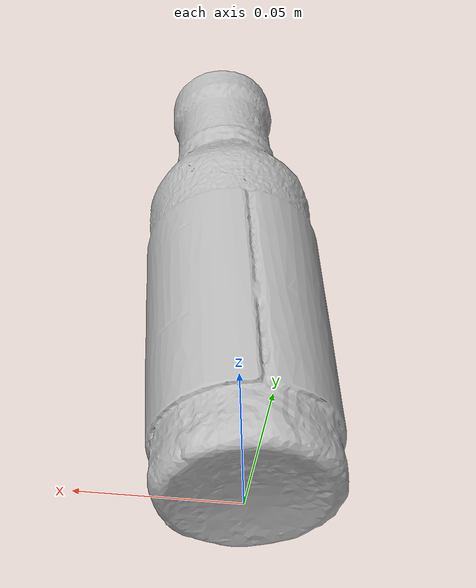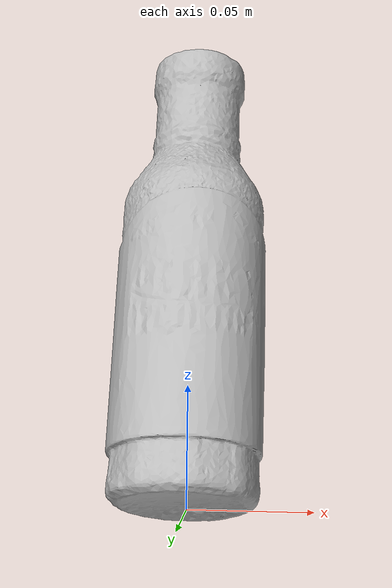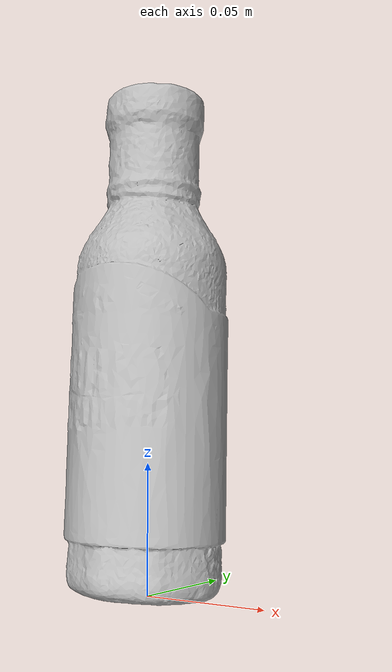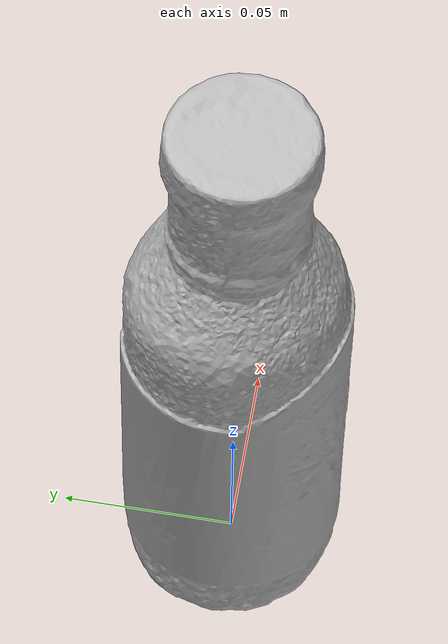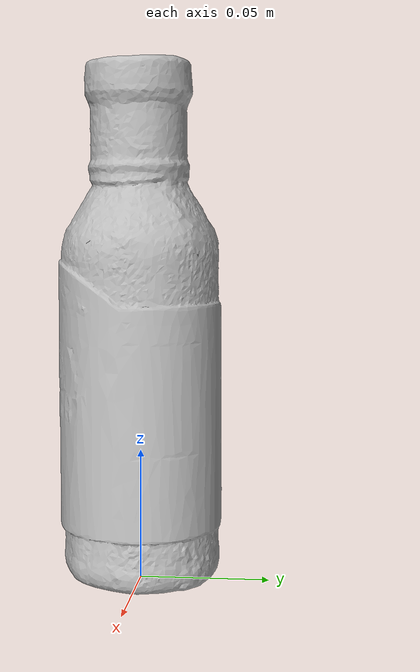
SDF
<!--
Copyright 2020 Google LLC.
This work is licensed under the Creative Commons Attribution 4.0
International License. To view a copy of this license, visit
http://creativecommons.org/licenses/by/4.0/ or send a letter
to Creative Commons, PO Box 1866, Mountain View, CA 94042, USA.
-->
<?xml version="1.0" ?>
<sdf version="1.6">
  <model name="Weston_No_22_Cajun_Jerky_Tonic_12_fl_oz_nLj64ZnGwDh">
    <link name="link_0">
      <pose>0 0 0.0995 0 0 0</pose>
      <inertial>
        <mass>0.2</mass>
        <inertia>
          <ixx>0.001</ixx>
          <ixy>0</ixy>
          <ixz>0</ixz>
          <iyy>0.001</iyy>
          <iyz>0</iyz>
          <izz>0.001</izz>
        </inertia>
      </inertial>
      <collision name="collision">
        <pose>0 0 0 0 0 0</pose>
        <geometry>
          <cylinder>
            <radius>0.032</radius>
            <length>0.199</length>
          </cylinder>
        </geometry>
        <surface>
          <friction>
            <ode>
              <mu>0.8</mu>
              <mu2>0.8</mu2>
            </ode>
          </friction>
          <contact>
            <ode>
              <kp>1000000</kp>
              <kd>100</kd>
              <max_vel>0.1</max_vel>
              <min_depth>0.001</min_depth>
            </ode>
          </contact>
          <bounce>
            <restitution_coefficient>0.0</restitution_coefficient>
            <threshold>0.0</threshold>
          </bounce>
        </surface>
      </collision>
      <visual name="visual">
        <pose>0 0 -0.0995 0 0 0</pose>
        <geometry>
          <mesh>
            <uri>meshes/model.obj</uri>
          </mesh>
        </geometry>
      </visual>
    </link>
  </model>
</sdf>
